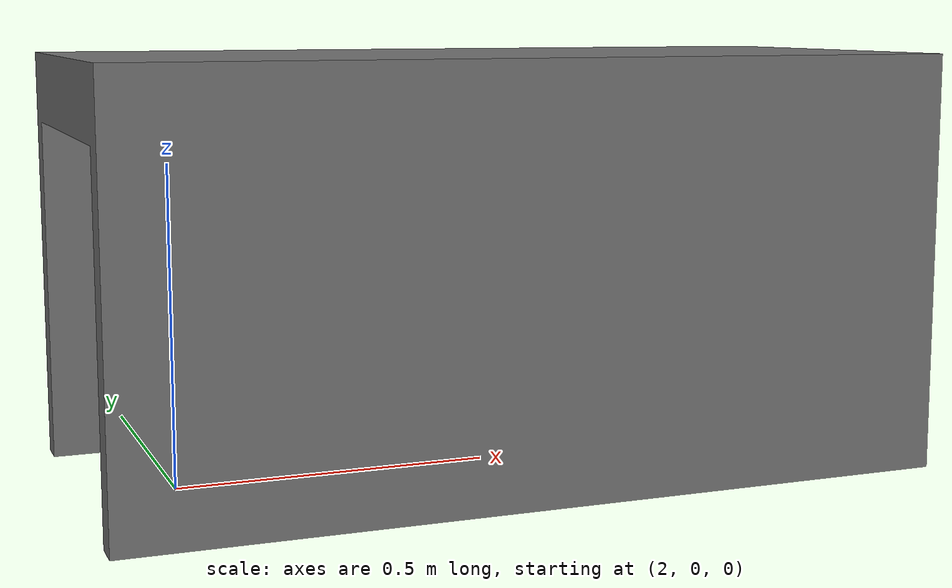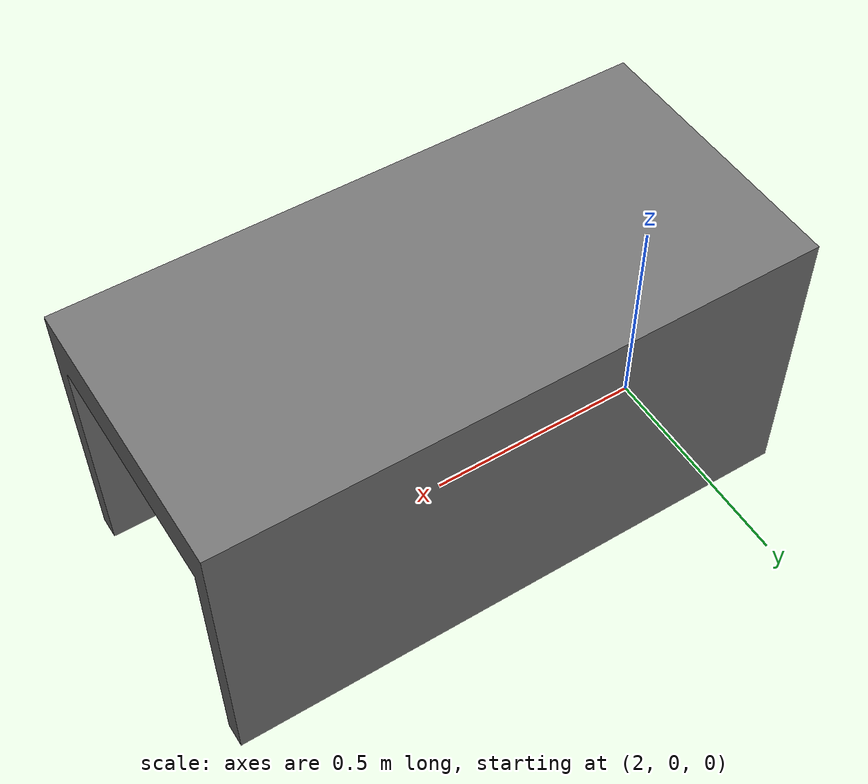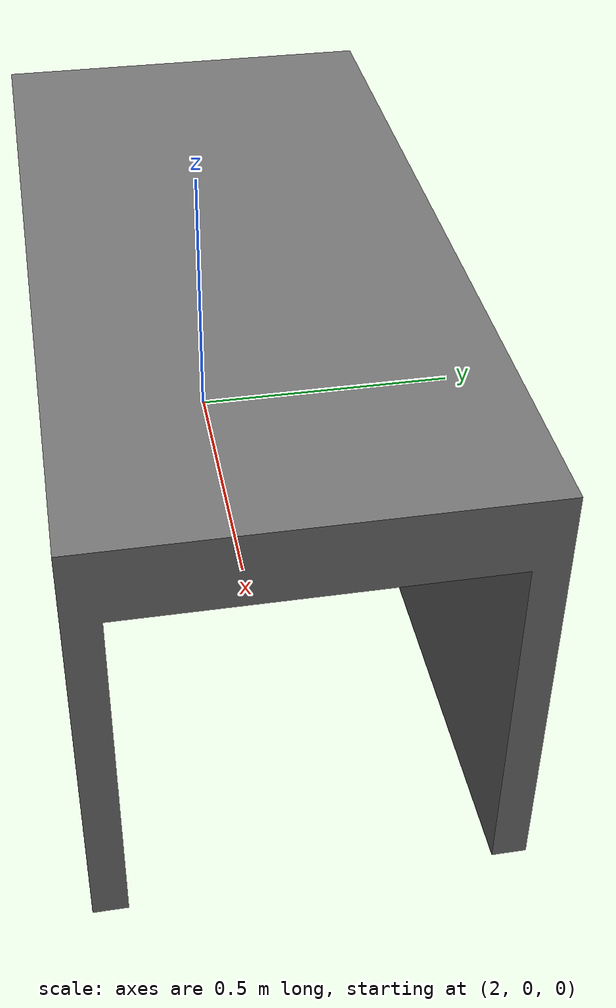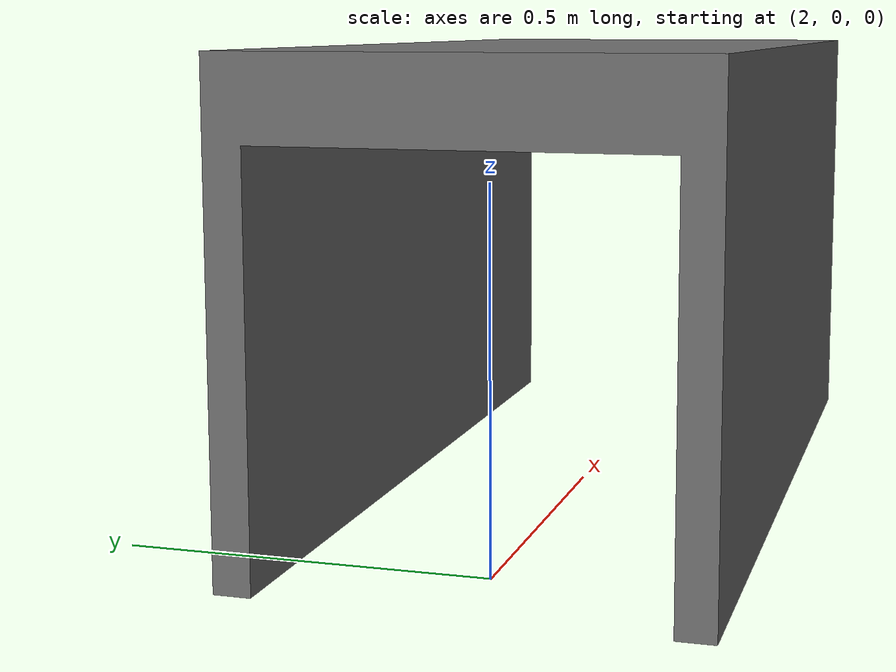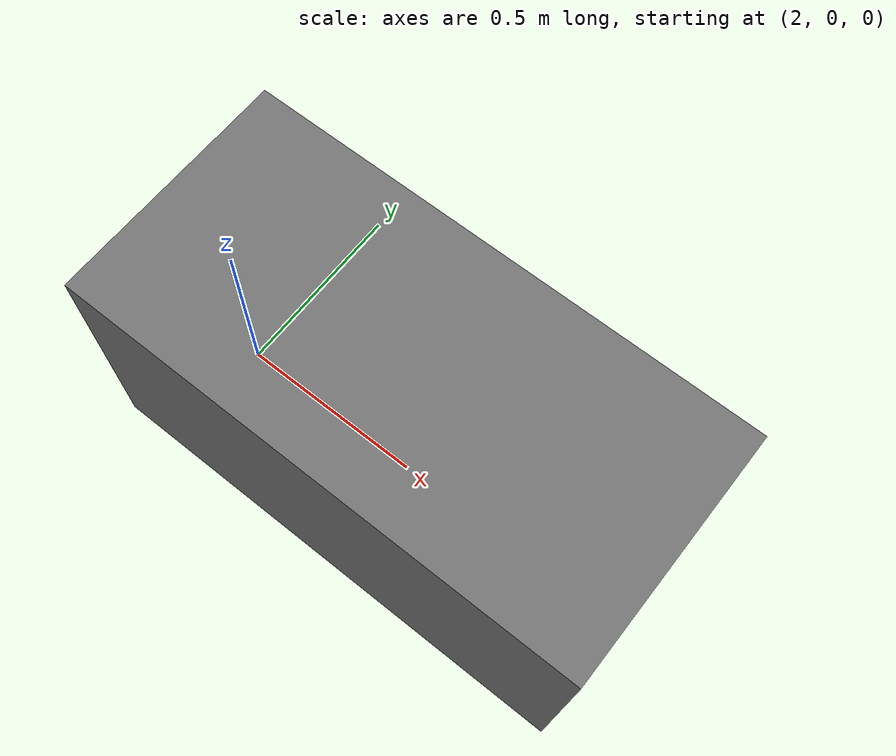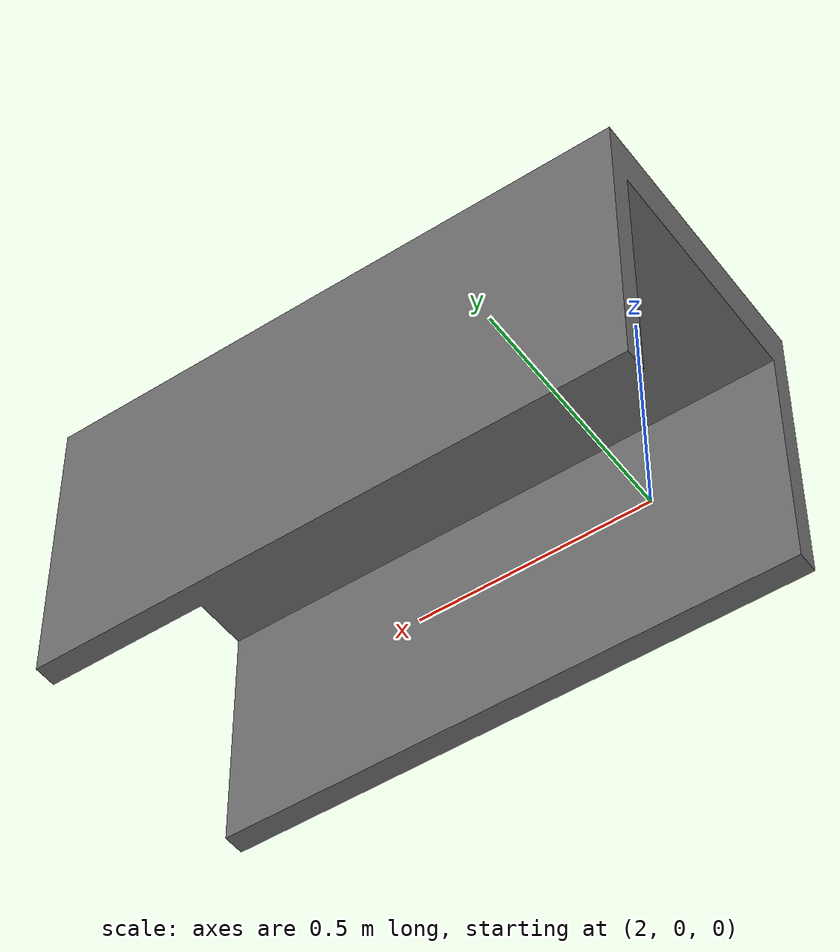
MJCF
<mujoco model="tunnel">

    <asset>
        <mesh name="tunnel_mesh" file="../assets/tunnel.obj" scale="0.01 0.01 0.011"/>
    </asset>

    <worldbody>
        <body name="tunnel" pos="1.85 -0.31 0">
            <geom name="tunnel_body" type="mesh" mesh="tunnel_mesh" rgba="0.45 0.45 0.45 1" contype="0" conaffinity="0"/>

            <geom name="tunnel_left_wall_collision" type="box" size="0.65 0.025 0.30" pos="0.65 0.025 0.30" rgba="0 0 0 0"/>

            <geom name="tunnel_right_wall_collision" type="box" size="0.65 0.025 0.30" pos="0.65 0.595 0.30" rgba="0 0 0 0"/>

            <geom name="tunnel_roof_collision" type="box" size="0.65 0.26 0.055" pos="0.65 0.31 0.605" rgba="0 0 0 0"/>

        </body>
    </worldbody>

</mujoco>
